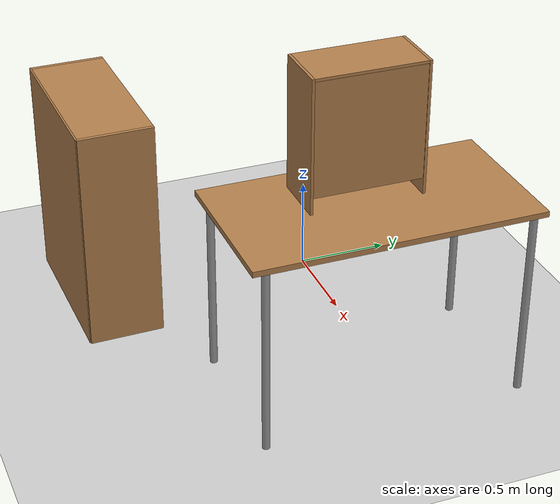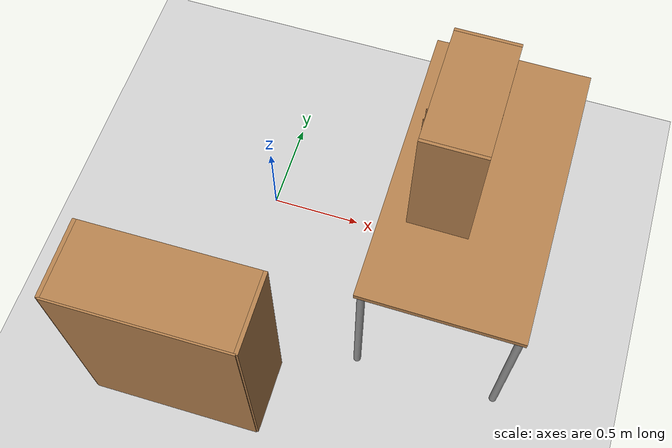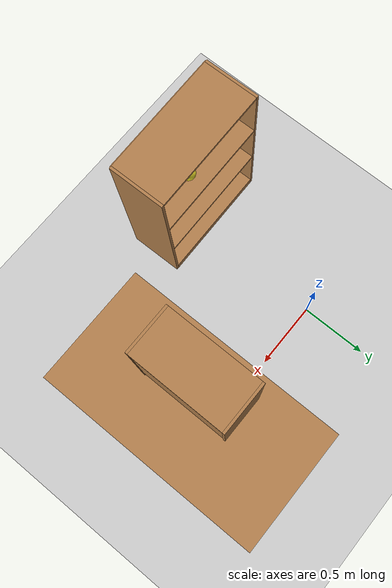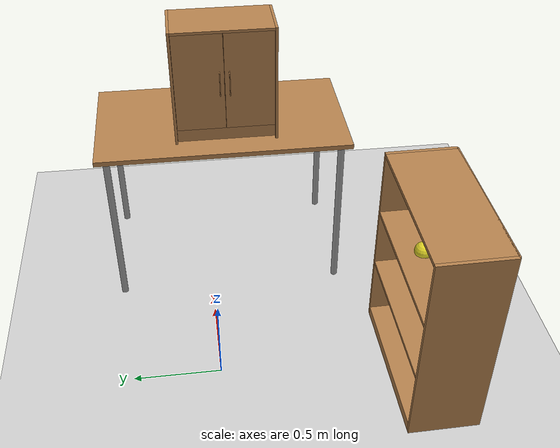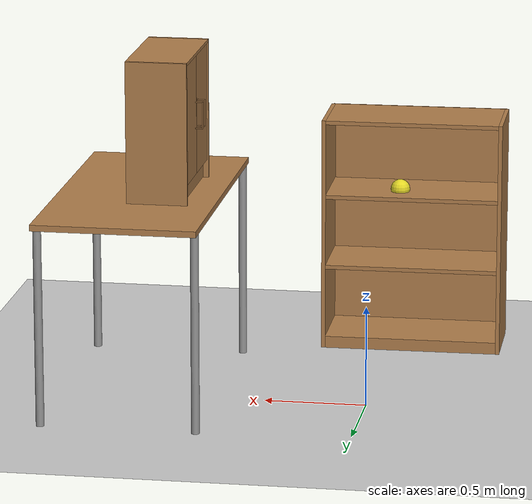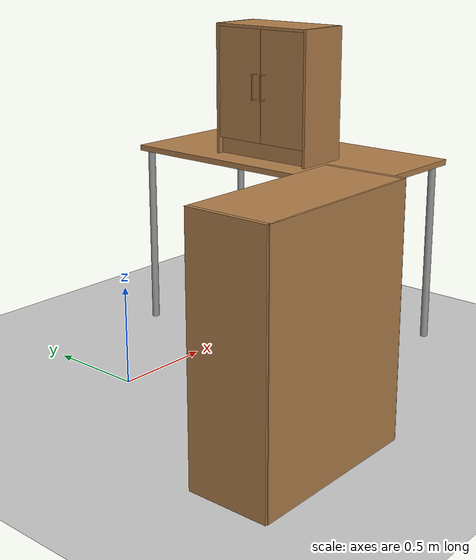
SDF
<sdf version="1.6">
 <world name="default">
  <light name="sun" type="directional">
   <pose>0 0 10 0 -0 0</pose>
   <diffuse>0.8 0.8 0.8 1</diffuse>
   <specular>0.2 0.2 0.2 1</specular>
   <attenuation>
    <range>1000</range>
    <constant>0.9</constant>
    <linear>0.01</linear>
    <quadratic>0.001</quadratic>
   </attenuation>
   <direction>-0.5 0.1 -0.9</direction>
  </light>
  <physics name="dart_1ms" default="1" type="ode">
   <max_step_size>0.001</max_step_size>
   <real_time_factor>1</real_time_factor>
   <real_time_update_rate>1000</real_time_update_rate>
  </physics>
  <physics name="dart_2ms" default="0" type="dart">
   <max_step_size>0.002</max_step_size>
   <real_time_factor>1</real_time_factor>
   <real_time_update_rate>500</real_time_update_rate>
  </physics>
  <physics name="dart_3ms" default="0" type="dart">
   <max_step_size>0.003</max_step_size>
   <real_time_factor>1</real_time_factor>
   <real_time_update_rate>333</real_time_update_rate>
  </physics>
  <physics name="dart_5ms" default="0" type="dart">
   <max_step_size>0.005</max_step_size>
   <real_time_factor>1</real_time_factor>
   <real_time_update_rate>200</real_time_update_rate>
  </physics>
  <model name="ground_plane">
   <static>1</static>
   <link name="link">
    <collision name="collision">
     <geometry><plane><normal>0 0 1</normal><size>100 100</size></plane></geometry>
     <surface><friction><ode><mu>100</mu><mu2>50</mu2></ode></friction></surface>
    </collision>
    <visual name="visual">
     <cast_shadows>0</cast_shadows>
     <geometry><plane><normal>0 0 1</normal><size>100 100</size></plane></geometry>
     <material>
      <script><uri>file://media/materials/scripts/gazebo.material</uri><name>Gazebo/Grey</name></script>
     </material>
    </visual>
   </link>
  </model>
  <physics name="default_physics" default="0" type="ode">
   <max_step_size>0.001</max_step_size>
   <real_time_factor>1</real_time_factor>
   <real_time_update_rate>1000</real_time_update_rate>
  </physics>
  <scene><ambient>0.4 0.4 0.4 1</ambient><background>0.7 0.7 0.7 1</background><shadows>1</shadows></scene>
  <audio><device>default</device></audio>
  <spherical_coordinates>
   <surface_model>EARTH_WGS84</surface_model>
   <latitude_deg>0</latitude_deg>
   <longitude_deg>0</longitude_deg>
   <elevation>0</elevation>
   <heading_deg>0</heading_deg>
  </spherical_coordinates>
  <model name="table">
   <static>1</static>
   <link name="link">
    <collision name="surface">
     <pose>0 0 1 0 -0 0</pose>
     <geometry><box><size>1.5 0.8 0.03</size></box></geometry>
     <surface><friction><ode><mu>0.6</mu><mu2>0.6</mu2></ode></friction></surface>
    </collision>
    <visual name="visual1">
     <pose>0 0 1 0 -0 0</pose>
     <geometry><box><size>1.5 0.8 0.03</size></box></geometry>
     <material>
      <script><uri>file://media/materials/scripts/gazebo.material</uri><name>Gazebo/Wood</name></script>
     </material>
    </visual>
    <collision name="front_left_leg">
     <pose>0.68 0.38 0.5 0 -0 0</pose>
     <geometry><cylinder><radius>0.02</radius><length>1</length></cylinder></geometry>
    </collision>
    <visual name="front_left_leg">
     <pose>0.68 0.38 0.5 0 -0 0</pose>
     <geometry><cylinder><radius>0.02</radius><length>1</length></cylinder></geometry>
     <material>
      <script><uri>file://media/materials/scripts/gazebo.material</uri><name>Gazebo/Grey</name></script>
     </material>
    </visual>
    <collision name="front_right_leg">
     <pose>0.68 -0.38 0.5 0 -0 0</pose>
     <geometry><cylinder><radius>0.02</radius><length>1</length></cylinder></geometry>
    </collision>
    <visual name="front_right_leg">
     <pose>0.68 -0.38 0.5 0 -0 0</pose>
     <geometry><cylinder><radius>0.02</radius><length>1</length></cylinder></geometry>
     <material>
      <script><uri>file://media/materials/scripts/gazebo.material</uri><name>Gazebo/Grey</name></script>
     </material>
    </visual>
    <collision name="back_right_leg">
     <pose>-0.68 -0.38 0.5 0 -0 0</pose>
     <geometry><cylinder><radius>0.02</radius><length>1</length></cylinder></geometry>
    </collision>
    <visual name="back_right_leg">
     <pose>-0.68 -0.38 0.5 0 -0 0</pose>
     <geometry><cylinder><radius>0.02</radius><length>1</length></cylinder></geometry>
     <material>
      <script><uri>file://media/materials/scripts/gazebo.material</uri><name>Gazebo/Grey</name></script>
     </material>
    </visual>
    <collision name="back_left_leg">
     <pose>-0.68 0.38 0.5 0 -0 0</pose>
     <geometry><cylinder><radius>0.02</radius><length>1</length></cylinder></geometry>
    </collision>
    <visual name="back_left_leg">
     <pose>-0.68 0.38 0.5 0 -0 0</pose>
     <geometry><cylinder><radius>0.02</radius><length>1</length></cylinder></geometry>
     <material>
      <script><uri>file://media/materials/scripts/gazebo.material</uri><name>Gazebo/Grey</name></script>
     </material>
    </visual>
   </link>
   <pose>1.12467 -0.11736 0 0 -0 1.5708</pose>
  </model>
  <model name="cabinet_door">
   <pose>1.00178 -0.138013 1.015 1e-06 0 3.14014</pose>
   <link name="cabinet">
    <pose>0 0 0.35 0 -0 0</pose>
    <inertial>
     <mass>16</mass>
     <inertia><ixx>1.59</ixx><ixy>0</ixy><ixz>0</ixz><iyy>1.12</iyy><iyz>0</iyz><izz>0.91</izz></inertia>
    </inertial>
    <collision name="back">
     <pose>-0.14 0 0.035 0 -0 0</pose>
     <geometry><box><size>0.015 0.585 0.6</size></box></geometry>
    </collision>
    <visual name="visual1">
     <pose>-0.14 0 0.035 0 -0 0</pose>
     <geometry><box><size>0.015 0.585 0.6</size></box></geometry>
     <material>
      <script><uri>file://media/materials/scripts/gazebo.material</uri><name>Gazebo/Wood</name></script>
     </material>
    </visual>
    <collision name="left_side">
     <pose>0 -0.2925 0 0 -0 0</pose>
     <geometry><box><size>0.3 0.015 0.7</size></box></geometry>
    </collision>
    <visual name="visual2">
     <pose>0 -0.2925 0 0 -0 0</pose>
     <geometry><box><size>0.3 0.015 0.7</size></box></geometry>
     <material>
      <script><uri>file://media/materials/scripts/gazebo.material</uri><name>Gazebo/Wood</name></script>
     </material>
    </visual>
    <collision name="right_side">
     <pose>0 0.2925 0 0 -0 0</pose>
     <geometry><box><size>0.3 0.015 0.7</size></box></geometry>
    </collision>
    <visual name="visual3">
     <pose>0 0.2925 0 0 -0 0</pose>
     <geometry><box><size>0.3 0.015 0.7</size></box></geometry>
     <material>
      <script><uri>file://media/materials/scripts/gazebo.material</uri><name>Gazebo/Wood</name></script>
     </material>
    </visual>
    <collision name="bottom">
     <pose>-0.002 0 -0.2525 0 -0 0</pose>
     <geometry><box><size>0.26 0.57 0.015</size></box></geometry>
    </collision>
    <visual name="visual4">
     <pose>-0.002 0 -0.2525 0 -0 0</pose>
     <geometry><box><size>0.26 0.57 0.015</size></box></geometry>
     <material>
      <script><uri>file://media/materials/scripts/gazebo.material</uri><name>Gazebo/Wood</name></script>
     </material>
    </visual>
    <collision name="top">
     <pose>0 0 0.3425 0 -0 0</pose>
     <geometry><box><size>0.3 0.57 0.015</size></box></geometry>
    </collision>
    <visual name="visual5">
     <pose>0 0 0.3425 0 -0 0</pose>
     <geometry><box><size>0.3 0.57 0.015</size></box></geometry>
     <material>
      <script><uri>file://media/materials/scripts/gazebo.material</uri><name>Gazebo/Wood</name></script>
     </material>
    </visual>
    <collision name="middle_shelf">
     <pose>-0.002 0 0.0475 0 -0 0</pose>
     <geometry><box><size>0.26 0.57 0.015</size></box></geometry>
    </collision>
    <visual name="visual6">
     <pose>-0.002 0 0.0475 0 -0 0</pose>
     <geometry><box><size>0.26 0.57 0.015</size></box></geometry>
     <material>
      <script><uri>file://media/materials/scripts/gazebo.material</uri><name>Gazebo/Wood</name></script>
     </material>
    </visual>
    <collision name="low_front">
     <pose>0.115 0 -0.3025 0 -0 0</pose>
     <geometry><box><size>0.015 0.57 0.09</size></box></geometry>
    </collision>
    <visual name="visual7">
     <pose>0.115 0 -0.3025 0 -0 0</pose>
     <geometry><box><size>0.015 0.57 0.09</size></box></geometry>
     <material>
      <script><uri>file://media/materials/scripts/gazebo.material</uri><name>Gazebo/Wood</name></script>
     </material>
    </visual>
   </link>
   <link name="right_door">
    <pose>0.135 0.2835 0.3875 0 -0 0</pose>
    <inertial>
     <mass>1.7</mass>
     <pose>0 -0.141 0 0 -0 0</pose>
     <inertia><ixx>0.06</ixx><ixy>0</ixy><ixz>0</ixz><iyy>0.49</iyy><iyz>0</iyz><izz>0.111</izz></inertia>
    </inertial>
    <collision name="right_face">
     <pose>0 -0.141 0 0 -0 0</pose>
     <geometry><box><size>0.015 0.282 0.595</size></box></geometry>
    </collision>
    <visual name="visual8">
     <pose>0 -0.141 0 0 -0 0</pose>
     <geometry><box><size>0.015 0.282 0.595</size></box></geometry>
     <material>
      <script><uri>file://media/materials/scripts/gazebo.material</uri><name>Gazebo/Wood</name></script>
     </material>
    </visual>
    <collision name="right_handle">
     <pose>0.04304 -0.2555 0 0 -0 0</pose>
     <geometry><box><size>0.005 0.005 0.136</size></box></geometry>
    </collision>
    <visual name="visual9">
     <pose>0.04304 -0.2555 0 0 -0 0</pose>
     <geometry><box><size>0.005 0.005 0.136</size></box></geometry>
     <material>
      <script><uri>file://media/materials/scripts/gazebo.material</uri><name>Gazebo/Wood</name></script>
     </material>
    </visual>
    <collision name="right_handle_up">
     <pose>0.02475 -0.2555 0.0656 0 -0 0</pose>
     <geometry><box><size>0.04 0.005 0.005</size></box></geometry>
    </collision>
    <visual name="visual10">
     <pose>0.02475 -0.2555 0.0656 0 -0 0</pose>
     <geometry><box><size>0.04 0.005 0.005</size></box></geometry>
     <material>
      <script><uri>file://media/materials/scripts/gazebo.material</uri><name>Gazebo/Wood</name></script>
     </material>
    </visual>
    <collision name="right_handle_bo">
     <pose>0.02475 -0.2555 -0.06542 0 -0 0</pose>
     <geometry><box><size>0.04 0.005 0.005</size></box></geometry>
    </collision>
    <visual name="visual11">
     <pose>0.02475 -0.2555 -0.06542 0 -0 0</pose>
     <geometry><box><size>0.04 0.005 0.005</size></box></geometry>
     <material>
      <script><uri>file://media/materials/scripts/gazebo.material</uri><name>Gazebo/Wood</name></script>
     </material>
    </visual>
   </link>
   <joint name="right_joint" type="revolute">
    <parent>cabinet</parent>
    <child>right_door</child>
    <axis>
     <xyz>0 0 1</xyz>
     <limit><lower>-0.001</lower><upper>1.58</upper></limit>
     <dynamics>
      <damping>0.5</damping>
      <friction>0.1</friction>
      <spring_reference>0</spring_reference>
      <spring_stiffness>0</spring_stiffness>
     </dynamics>
     <use_parent_model_frame>1</use_parent_model_frame>
    </axis>
   </joint>
   <link name="left_door">
    <pose>0.135 -0.2835 0.3875 0 -0 0</pose>
    <inertial>
     <mass>1</mass>
     <pose>0 0.141 0 0 -0 0</pose>
     <inertia><ixx>0.06</ixx><ixy>0</ixy><ixz>0</ixz><iyy>0.49</iyy><iyz>0</iyz><izz>0.111</izz></inertia>
    </inertial>
    <collision name="left_face">
     <pose>0 0.141 0 0 -0 0</pose>
     <geometry><box><size>0.015 0.282 0.595</size></box></geometry>
    </collision>
    <visual name="visual12">
     <pose>0 0.141 0 0 -0 0</pose>
     <geometry><box><size>0.015 0.282 0.595</size></box></geometry>
     <material>
      <script><uri>file://media/materials/scripts/gazebo.material</uri><name>Gazebo/Wood</name></script>
     </material>
    </visual>
    <collision name="left_handle">
     <pose>0.04304 0.2555 0 0 -0 0</pose>
     <geometry><box><size>0.005 0.005 0.136</size></box></geometry>
    </collision>
    <visual name="visual13">
     <pose>0.04304 0.2555 0 0 -0 0</pose>
     <geometry><box><size>0.005 0.005 0.136</size></box></geometry>
     <material>
      <script><uri>file://media/materials/scripts/gazebo.material</uri><name>Gazebo/Wood</name></script>
     </material>
    </visual>
    <collision name="left_handle_up">
     <pose>0.02475 0.2555 0.0656 0 -0 0</pose>
     <geometry><box><size>0.04 0.005 0.005</size></box></geometry>
    </collision>
    <visual name="visual14">
     <pose>0.02475 0.2555 0.0656 0 -0 0</pose>
     <geometry><box><size>0.04 0.005 0.005</size></box></geometry>
     <material>
      <script><uri>file://media/materials/scripts/gazebo.material</uri><name>Gazebo/Wood</name></script>
     </material>
    </visual>
    <collision name="left_handle_bo">
     <pose>0.02475 0.2555 -0.06542 0 -0 0</pose>
     <geometry><box><size>0.04 0.005 0.005</size></box></geometry>
    </collision>
    <visual name="visual15">
     <pose>0.02475 0.2555 -0.06542 0 -0 0</pose>
     <geometry><box><size>0.04 0.005 0.005</size></box></geometry>
     <material>
      <script><uri>file://media/materials/scripts/gazebo.material</uri><name>Gazebo/Wood</name></script>
     </material>
    </visual>
   </link>
   <joint name="left_joint" type="revolute">
    <parent>cabinet</parent>
    <child>left_door</child>
    <axis>
     <xyz>0 0 1</xyz>
     <limit><lower>-1.58</lower><upper>0.001</upper></limit>
     <dynamics>
      <damping>0.5</damping>
      <friction>0.1</friction>
      <spring_reference>0</spring_reference>
      <spring_stiffness>0</spring_stiffness>
     </dynamics>
     <use_parent_model_frame>1</use_parent_model_frame>
    </axis>
   </joint>
  </model>
  <gravity>0 0 -9.8</gravity>
  <magnetic_field>6e-06 2.3e-05 -4.2e-05</magnetic_field>
  <atmosphere type="adiabatic"/>
  <model name="bookshelf">
   <static>1</static>
   <link name="link">
    <inertial><mass>1</mass></inertial>
    <collision name="back">
     <pose>0 0.005 0.6 0 -0 0</pose>
     <geometry><box><size>0.9 0.01 1.2</size></box></geometry>
    </collision>
    <visual name="visual1">
     <pose>0 0.005 0.6 0 -0 0</pose>
     <geometry><box><size>0.9 0.01 1.2</size></box></geometry>
     <material>
      <script><uri>file://media/materials/scripts/gazebo.material</uri><name>Gazebo/Wood</name></script>
     </material>
    </visual>
    <collision name="left_side">
     <pose>0.45 -0.195 0.6 0 -0 0</pose>
     <geometry><box><size>0.02 0.4 1.2</size></box></geometry>
    </collision>
    <visual name="visual2">
     <pose>0.45 -0.195 0.6 0 -0 0</pose>
     <geometry><box><size>0.02 0.4 1.2</size></box></geometry>
     <material>
      <script><uri>file://media/materials/scripts/gazebo.material</uri><name>Gazebo/Wood</name></script>
     </material>
    </visual>
    <collision name="right_side">
     <pose>-0.45 -0.195 0.6 0 -0 0</pose>
     <geometry><box><size>0.02 0.4 1.2</size></box></geometry>
    </collision>
    <visual name="visual3">
     <pose>-0.45 -0.195 0.6 0 -0 0</pose>
     <geometry><box><size>0.02 0.4 1.2</size></box></geometry>
     <material>
      <script><uri>file://media/materials/scripts/gazebo.material</uri><name>Gazebo/Wood</name></script>
     </material>
    </visual>
    <collision name="bottom">
     <pose>0 -0.195 0.03 0 -0 0</pose>
     <geometry><box><size>0.88 0.4 0.06</size></box></geometry>
    </collision>
    <visual name="visual4">
     <pose>0 -0.195 0.03 0 -0 0</pose>
     <geometry><box><size>0.88 0.4 0.06</size></box></geometry>
     <material>
      <script><uri>file://media/materials/scripts/gazebo.material</uri><name>Gazebo/Wood</name></script>
     </material>
    </visual>
    <collision name="top">
     <pose>0 -0.195 1.19 0 -0 0</pose>
     <geometry><box><size>0.88 0.4 0.02</size></box></geometry>
    </collision>
    <visual name="visual5">
     <pose>0 -0.195 1.19 0 -0 0</pose>
     <geometry><box><size>0.88 0.4 0.02</size></box></geometry>
     <material>
      <script><uri>file://media/materials/scripts/gazebo.material</uri><name>Gazebo/Wood</name></script>
     </material>
    </visual>
    <collision name="low_shelf">
     <pose>0 -0.195 0.43 0 -0 0</pose>
     <geometry><box><size>0.88 0.4 0.02</size></box></geometry>
    </collision>
    <visual name="visual6">
     <pose>0 -0.195 0.43 0 -0 0</pose>
     <geometry><box><size>0.88 0.4 0.02</size></box></geometry>
     <material>
      <script><uri>file://media/materials/scripts/gazebo.material</uri><name>Gazebo/Wood</name></script>
     </material>
    </visual>
    <collision name="high_shelf">
     <pose>0 -0.195 0.8 0 -0 0</pose>
     <geometry><box><size>0.88 0.4 0.02</size></box></geometry>
    </collision>
    <visual name="visual7">
     <pose>0 -0.195 0.8 0 -0 0</pose>
     <geometry><box><size>0.88 0.4 0.02</size></box></geometry>
     <material>
      <script><uri>file://media/materials/scripts/gazebo.material</uri><name>Gazebo/Wood</name></script>
     </material>
    </visual>
   </link>
   <pose>-0.093457 -1.34954 0 0 0 -3.12733</pose>
  </model>
  <model name="dummy">
   <link name="link">
    <gravity>0</gravity>
    <inertial>
     <mass>0.0122</mass>
     <inertia>
      <ixx>1.08758e-06</ixx>
      <ixy>0</ixy>
      <ixz>0</ixz>
      <iyy>1.08758e-06</iyy>
      <iyz>0</iyz>
      <izz>2.16703e-06</izz>
     </inertia>
    </inertial>
    <visual name="visual">
     <geometry><sphere><radius>0.05</radius></sphere></geometry>
     <material>
      <script><uri>file://media/materials/scripts/gazebo.material</uri><name>Gazebo/Yellow</name></script>
     </material>
    </visual>
   </link>
   <pose>-0.025936 -1.09836 0.821285 0 -0 0</pose>
  </model>
 </world>
</sdf>
